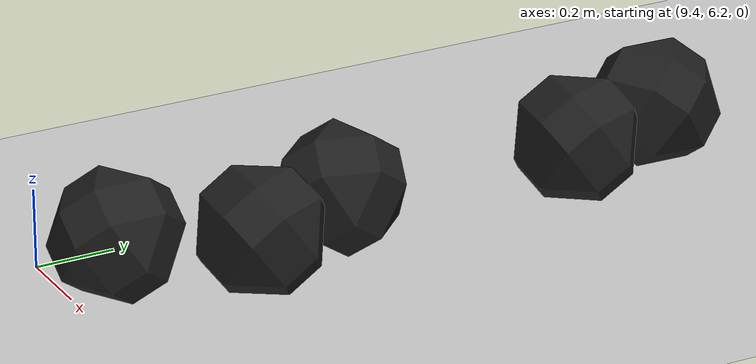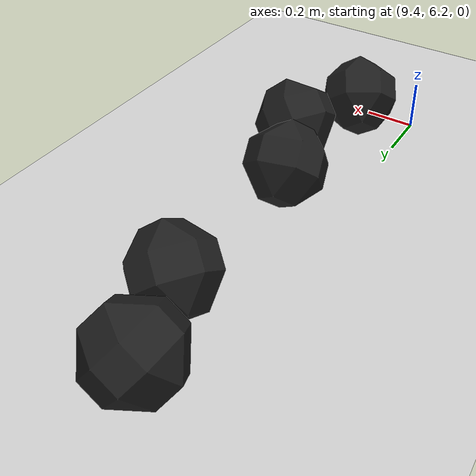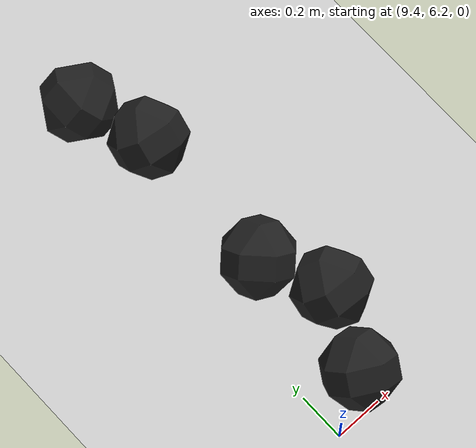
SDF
<sdf version="1.7">
 <world name="default">
  <model name="ground_plane">
   <static>1</static>
   <link name="link">
    <collision name="collision">
     <geometry><plane><normal>0 0 1</normal><size>100 100</size></plane></geometry>
     <surface><friction><ode><mu>100</mu><mu2>50</mu2></ode></friction></surface>
    </collision>
    <visual name="visual">
     <cast_shadows>0</cast_shadows>
     <geometry><plane><normal>0 0 1</normal><size>100 100</size></plane></geometry>
     <material>
      <script><uri>file://media/materials/scripts/gazebo.material</uri><name>Gazebo/Grey</name></script>
     </material>
    </visual>
   </link>
  </model>
  <model name="haoduomiantiaa_38">
   <link name="link_0">
    <inertial>
     <mass>0.2</mass>
     <inertia>
      <ixx>0.166667</ixx>
      <ixy>0</ixy>
      <ixz>0</ixz>
      <iyy>0.166667</iyy>
      <iyz>0</iyz>
      <izz>0.166667</izz>
     </inertia>
    </inertial>
    <visual name="visual">
     <geometry>
      <mesh>
       <uri>/home/lihaoyang/catkin_ws/src/pudong_gazebo/world/stl/haoduomianti.stl</uri>
       <scale>1 1 1</scale>
      </mesh>
     </geometry>
     <material>
      <lighting>1</lighting>
      <script><uri>file://media/materials/scripts/gazebo.material</uri><name>Gazebo/Black</name></script>
      <shader type="pixel"><normal_map>__default__</normal_map></shader>
      <ambient>0.3 0.3 0.3 1</ambient>
      <diffuse>0.7 0.7 0.7 1</diffuse>
      <specular>0.01 0.01 0.01 1</specular>
      <emissive>0 0 0 1</emissive>
     </material>
    </visual>
    <collision name="collision">
     <geometry>
      <mesh>
       <uri>/home/lihaoyang/catkin_ws/src/pudong_gazebo/world/stl/haoduomianti.stl</uri>
       <scale>1 1 1</scale>
      </mesh>
     </geometry>
     <surface>
      <friction>
       <ode><mu>1</mu><mu2>1</mu2><fdir1>0 0 0</fdir1><slip1>0</slip1><slip2>0</slip2></ode>
       <torsional>
        <coefficient>1</coefficient>
        <patch_radius>0</patch_radius>
        <surface_radius>0</surface_radius>
        <use_patch_radius>1</use_patch_radius>
        <ode><slip>0</slip></ode>
       </torsional>
      </friction>
      <bounce><restitution_coefficient>0</restitution_coefficient><threshold>1e+06</threshold></bounce>
      <contact>
       <collide_without_contact>0</collide_without_contact>
       <collide_without_contact_bitmask>1</collide_without_contact_bitmask>
       <collide_bitmask>1</collide_bitmask>
       <ode>
        <soft_cfm>0</soft_cfm>
        <soft_erp>0.2</soft_erp>
        <kp>1e+13</kp>
        <kd>1</kd>
        <max_vel>0.01</max_vel>
        <min_depth>0</min_depth>
       </ode>
       <bullet>
        <split_impulse>1</split_impulse>
        <split_impulse_penetration_threshold>-0.01</split_impulse_penetration_threshold>
        <soft_cfm>0</soft_cfm>
        <soft_erp>0.2</soft_erp>
        <kp>1e+13</kp>
        <kd>1</kd>
       </bullet>
      </contact>
     </surface>
    </collision>
   </link>
   <static>0</static>
   <pose>9.53542 7.82195 -0.11547 0.785399 -0.615478 2.06558</pose>
  </model>
  <model name="haoduomiantiaa_49">
   <link name="link_0">
    <inertial>
     <mass>0.2</mass>
     <inertia>
      <ixx>0.166667</ixx>
      <ixy>0</ixy>
      <ixz>0</ixz>
      <iyy>0.166667</iyy>
      <iyz>0</iyz>
      <izz>0.166667</izz>
     </inertia>
    </inertial>
    <visual name="visual">
     <geometry>
      <mesh>
       <uri>/home/lihaoyang/catkin_ws/src/pudong_gazebo/world/stl/haoduomianti.stl</uri>
       <scale>1 1 1</scale>
      </mesh>
     </geometry>
     <material>
      <lighting>1</lighting>
      <script><uri>file://media/materials/scripts/gazebo.material</uri><name>Gazebo/Black</name></script>
      <shader type="pixel"><normal_map>__default__</normal_map></shader>
      <ambient>0.3 0.3 0.3 1</ambient>
      <diffuse>0.7 0.7 0.7 1</diffuse>
      <specular>0.01 0.01 0.01 1</specular>
      <emissive>0 0 0 1</emissive>
     </material>
    </visual>
    <collision name="collision">
     <geometry>
      <mesh>
       <uri>/home/lihaoyang/catkin_ws/src/pudong_gazebo/world/stl/haoduomianti.stl</uri>
       <scale>1 1 1</scale>
      </mesh>
     </geometry>
     <surface>
      <friction>
       <ode><mu>1</mu><mu2>1</mu2><fdir1>0 0 0</fdir1><slip1>0</slip1><slip2>0</slip2></ode>
       <torsional>
        <coefficient>1</coefficient>
        <patch_radius>0</patch_radius>
        <surface_radius>0</surface_radius>
        <use_patch_radius>1</use_patch_radius>
        <ode><slip>0</slip></ode>
       </torsional>
      </friction>
      <bounce><restitution_coefficient>0</restitution_coefficient><threshold>1e+06</threshold></bounce>
      <contact>
       <collide_without_contact>0</collide_without_contact>
       <collide_without_contact_bitmask>1</collide_without_contact_bitmask>
       <collide_bitmask>1</collide_bitmask>
       <ode>
        <soft_cfm>0</soft_cfm>
        <soft_erp>0.2</soft_erp>
        <kp>1e+13</kp>
        <kd>1</kd>
        <max_vel>0.01</max_vel>
        <min_depth>0</min_depth>
       </ode>
       <bullet>
        <split_impulse>1</split_impulse>
        <split_impulse_penetration_threshold>-0.01</split_impulse_penetration_threshold>
        <soft_cfm>0</soft_cfm>
        <soft_erp>0.2</soft_erp>
        <kp>1e+13</kp>
        <kd>1</kd>
       </bullet>
      </contact>
     </surface>
    </collision>
   </link>
   <static>0</static>
   <pose>9.74337 6.62029 -0.115293 0.7854 -0.611184 -0.581187</pose>
  </model>
  <model name="haoduomiantiaa_60">
   <link name="link_0">
    <inertial>
     <mass>0.2</mass>
     <inertia>
      <ixx>0.166667</ixx>
      <ixy>0</ixy>
      <ixz>0</ixz>
      <iyy>0.166667</iyy>
      <iyz>0</iyz>
      <izz>0.166667</izz>
     </inertia>
    </inertial>
    <visual name="visual">
     <geometry>
      <mesh>
       <uri>/home/lihaoyang/catkin_ws/src/pudong_gazebo/world/stl/haoduomianti.stl</uri>
       <scale>1 1 1</scale>
      </mesh>
     </geometry>
     <material>
      <lighting>1</lighting>
      <script><uri>file://media/materials/scripts/gazebo.material</uri><name>Gazebo/Black</name></script>
      <shader type="pixel"><normal_map>__default__</normal_map></shader>
      <ambient>0.3 0.3 0.3 1</ambient>
      <diffuse>0.7 0.7 0.7 1</diffuse>
      <specular>0.01 0.01 0.01 1</specular>
      <emissive>0 0 0 1</emissive>
     </material>
    </visual>
    <collision name="collision">
     <geometry>
      <mesh>
       <uri>/home/lihaoyang/catkin_ws/src/pudong_gazebo/world/stl/haoduomianti.stl</uri>
       <scale>1 1 1</scale>
      </mesh>
     </geometry>
     <surface>
      <friction>
       <ode><mu>1</mu><mu2>1</mu2><fdir1>0 0 0</fdir1><slip1>0</slip1><slip2>0</slip2></ode>
       <torsional>
        <coefficient>1</coefficient>
        <patch_radius>0</patch_radius>
        <surface_radius>0</surface_radius>
        <use_patch_radius>1</use_patch_radius>
        <ode><slip>0</slip></ode>
       </torsional>
      </friction>
      <bounce><restitution_coefficient>0</restitution_coefficient><threshold>1e+06</threshold></bounce>
      <contact>
       <collide_without_contact>0</collide_without_contact>
       <collide_without_contact_bitmask>1</collide_without_contact_bitmask>
       <collide_bitmask>1</collide_bitmask>
       <ode>
        <soft_cfm>0</soft_cfm>
        <soft_erp>0.2</soft_erp>
        <kp>1e+13</kp>
        <kd>1</kd>
        <max_vel>0.01</max_vel>
        <min_depth>0</min_depth>
       </ode>
       <bullet>
        <split_impulse>1</split_impulse>
        <split_impulse_penetration_threshold>-0.01</split_impulse_penetration_threshold>
        <soft_cfm>0</soft_cfm>
        <soft_erp>0.2</soft_erp>
        <kp>1e+13</kp>
        <kd>1</kd>
       </bullet>
      </contact>
     </surface>
    </collision>
   </link>
   <static>0</static>
   <pose>9.6208 6.89466 -0.115297 0.78531 -0.615309 2.87201</pose>
  </model>
  <model name="haoduomiantiaa_78">
   <link name="link_0">
    <inertial>
     <mass>0.2</mass>
     <inertia>
      <ixx>0.166667</ixx>
      <ixy>0</ixy>
      <ixz>0</ixz>
      <iyy>0.166667</iyy>
      <iyz>0</iyz>
      <izz>0.166667</izz>
     </inertia>
    </inertial>
    <visual name="visual">
     <geometry>
      <mesh>
       <uri>/home/lihaoyang/catkin_ws/src/pudong_gazebo/world/stl/haoduomianti.stl</uri>
       <scale>1 1 1</scale>
      </mesh>
     </geometry>
     <material>
      <lighting>1</lighting>
      <script><uri>file://media/materials/scripts/gazebo.material</uri><name>Gazebo/Black</name></script>
      <shader type="pixel"><normal_map>__default__</normal_map></shader>
      <ambient>0.3 0.3 0.3 1</ambient>
      <diffuse>0.7 0.7 0.7 1</diffuse>
      <specular>0.01 0.01 0.01 1</specular>
      <emissive>0 0 0 1</emissive>
     </material>
    </visual>
    <collision name="collision">
     <geometry>
      <mesh>
       <uri>/home/lihaoyang/catkin_ws/src/pudong_gazebo/world/stl/haoduomianti.stl</uri>
       <scale>1 1 1</scale>
      </mesh>
     </geometry>
     <surface>
      <friction>
       <ode><mu>1</mu><mu2>1</mu2><fdir1>0 0 0</fdir1><slip1>0</slip1><slip2>0</slip2></ode>
       <torsional>
        <coefficient>1</coefficient>
        <patch_radius>0</patch_radius>
        <surface_radius>0</surface_radius>
        <use_patch_radius>1</use_patch_radius>
        <ode><slip>0</slip></ode>
       </torsional>
      </friction>
      <bounce><restitution_coefficient>0</restitution_coefficient><threshold>1e+06</threshold></bounce>
      <contact>
       <collide_without_contact>0</collide_without_contact>
       <collide_without_contact_bitmask>1</collide_without_contact_bitmask>
       <collide_bitmask>1</collide_bitmask>
       <ode>
        <soft_cfm>0</soft_cfm>
        <soft_erp>0.2</soft_erp>
        <kp>1e+13</kp>
        <kd>1</kd>
        <max_vel>0.01</max_vel>
        <min_depth>0</min_depth>
       </ode>
       <bullet>
        <split_impulse>1</split_impulse>
        <split_impulse_penetration_threshold>-0.01</split_impulse_penetration_threshold>
        <soft_cfm>0</soft_cfm>
        <soft_erp>0.2</soft_erp>
        <kp>1e+13</kp>
        <kd>1</kd>
       </bullet>
      </contact>
     </surface>
    </collision>
   </link>
   <static>0</static>
   <pose>9.60553 6.31434 -0.116401 0.785332 -0.615566 1.06481</pose>
  </model>
  <model name="haoduomiantiaa_102">
   <link name="link_0">
    <inertial>
     <mass>0.2</mass>
     <inertia>
      <ixx>0.166667</ixx>
      <ixy>0</ixy>
      <ixz>0</ixz>
      <iyy>0.166667</iyy>
      <iyz>0</iyz>
      <izz>0.166667</izz>
     </inertia>
    </inertial>
    <visual name="visual">
     <geometry>
      <mesh>
       <uri>/home/lihaoyang/catkin_ws/src/pudong_gazebo/world/stl/haoduomianti.stl</uri>
       <scale>1 1 1</scale>
      </mesh>
     </geometry>
     <material>
      <lighting>1</lighting>
      <script><uri>file://media/materials/scripts/gazebo.material</uri><name>Gazebo/Black</name></script>
      <shader type="pixel"><normal_map>__default__</normal_map></shader>
      <ambient>0.3 0.3 0.3 1</ambient>
      <diffuse>0.7 0.7 0.7 1</diffuse>
      <specular>0.01 0.01 0.01 1</specular>
      <emissive>0 0 0 1</emissive>
     </material>
    </visual>
    <collision name="collision">
     <geometry>
      <mesh>
       <uri>/home/lihaoyang/catkin_ws/src/pudong_gazebo/world/stl/haoduomianti.stl</uri>
       <scale>1 1 1</scale>
      </mesh>
     </geometry>
     <surface>
      <friction>
       <ode><mu>1</mu><mu2>1</mu2><fdir1>0 0 0</fdir1><slip1>0</slip1><slip2>0</slip2></ode>
       <torsional>
        <coefficient>1</coefficient>
        <patch_radius>0</patch_radius>
        <surface_radius>0</surface_radius>
        <use_patch_radius>1</use_patch_radius>
        <ode><slip>0</slip></ode>
       </torsional>
      </friction>
      <bounce><restitution_coefficient>0</restitution_coefficient><threshold>1e+06</threshold></bounce>
      <contact>
       <collide_without_contact>0</collide_without_contact>
       <collide_without_contact_bitmask>1</collide_without_contact_bitmask>
       <collide_bitmask>1</collide_bitmask>
       <ode>
        <soft_cfm>0</soft_cfm>
        <soft_erp>0.2</soft_erp>
        <kp>1e+13</kp>
        <kd>1</kd>
        <max_vel>0.01</max_vel>
        <min_depth>0</min_depth>
       </ode>
       <bullet>
        <split_impulse>1</split_impulse>
        <split_impulse_penetration_threshold>-0.01</split_impulse_penetration_threshold>
        <soft_cfm>0</soft_cfm>
        <soft_erp>0.2</soft_erp>
        <kp>1e+13</kp>
        <kd>1</kd>
       </bullet>
      </contact>
     </surface>
    </collision>
   </link>
   <static>0</static>
   <pose>9.63491 7.5338 -0.115497 0.785429 -0.615473 -0.651811</pose>
  </model>
 </world>
</sdf>
